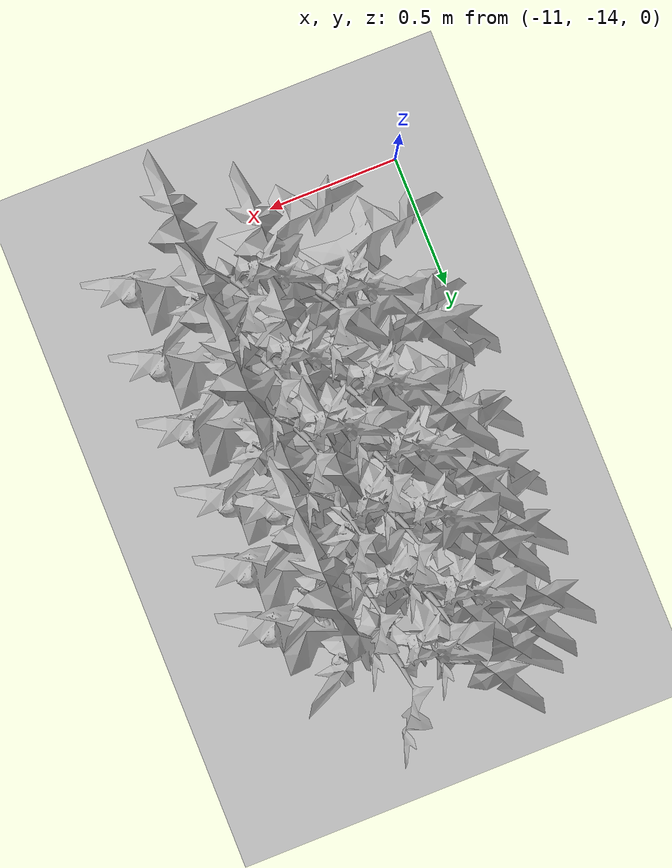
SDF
<sdf version="1.6">
 <world name="default">
  <model name="ground_plane">
   <static>1</static>
   <link name="link">
    <collision name="collision">
     <geometry><plane><normal>0 0 1</normal><size>100 100</size></plane></geometry>
     <surface>
      <contact><collide_bitmask>65535</collide_bitmask></contact>
      <friction><ode><mu>100</mu><mu2>50</mu2></ode></friction>
     </surface>
    </collision>
    <visual name="visual">
     <cast_shadows>0</cast_shadows>
     <geometry><plane><normal>0 0 1</normal><size>100 100</size></plane></geometry>
     <material>
      <script><uri>file://media/materials/scripts/gazebo.material</uri><name>Gazebo/Grey</name></script>
     </material>
    </visual>
   </link>
  </model>
  <model name="Front_Plant_1_29">
   <model name="tomato_plant_medium">
    <static>1</static>
    <link name="link">
     <collision name="collision">
      <pose>0 0 0 1.5708 -0 0</pose>
      <geometry><mesh><scale>0.5 0.5 0.5</scale><uri>model://stick/meshes/stick.dae</uri></mesh></geometry>
     </collision>
     <visual name="visual">
      <geometry>
       <mesh><scale>5e-06 5e-06 6e-06</scale><uri>model://tomato_plant_medium/meshes/tomato-plant.dae</uri></mesh>
      </geometry>
     </visual>
    </link>
    <pose>0.087453 -0.595994 0.012396 0 -0 0</pose>
   </model>
   <model name="tomato_plant_medium_0">
    <static>1</static>
    <link name="link">
     <collision name="collision">
      <pose>0 0 0 1.5708 -0 0</pose>
      <geometry><mesh><scale>0.5 0.5 0.5</scale><uri>model://stick/meshes/stick.dae</uri></mesh></geometry>
     </collision>
     <visual name="visual">
      <geometry>
       <mesh><scale>5e-06 5e-06 6e-06</scale><uri>model://tomato_plant_medium/meshes/tomato-plant.dae</uri></mesh>
      </geometry>
     </visual>
    </link>
    <pose>-0.086166 -0.251822 0.012396 0 -0 0</pose>
   </model>
   <model name="tomato_plant_medium_1">
    <static>1</static>
    <link name="link">
     <collision name="collision">
      <pose>0 0 0 1.5708 -0 0</pose>
      <geometry><mesh><scale>0.5 0.5 0.5</scale><uri>model://stick/meshes/stick.dae</uri></mesh></geometry>
     </collision>
     <visual name="visual">
      <geometry>
       <mesh><scale>5e-06 5e-06 6e-06</scale><uri>model://tomato_plant_medium/meshes/tomato-plant.dae</uri></mesh>
      </geometry>
     </visual>
    </link>
    <pose>0.080199 0.118127 0.012396 0 -0 0</pose>
   </model>
   <model name="tomato_plant_small">
    <static>1</static>
    <link name="link">
     <collision name="collision">
      <pose>0 0 0 1.5708 -0 0</pose>
      <geometry><mesh><scale>0.5 0.45 0.5</scale><uri>model://stick/meshes/stick.dae</uri></mesh></geometry>
     </collision>
     <visual name="visual">
      <geometry>
       <mesh><scale>5e-06 5e-06 5e-06</scale><uri>model://tomato_plant_small/meshes/tomato-plant.dae</uri></mesh>
      </geometry>
     </visual>
    </link>
    <pose>0.099683 -1.12011 0.012396 0 -0 0</pose>
   </model>
   <model name="tomato_plant_small_0">
    <static>1</static>
    <link name="link">
     <collision name="collision">
      <pose>0 0 0 1.5708 -0 0</pose>
      <geometry><mesh><scale>0.5 0.45 0.5</scale><uri>model://stick/meshes/stick.dae</uri></mesh></geometry>
     </collision>
     <visual name="visual">
      <geometry>
       <mesh><scale>5e-06 5e-06 5e-06</scale><uri>model://tomato_plant_small/meshes/tomato-plant.dae</uri></mesh>
      </geometry>
     </visual>
    </link>
    <pose>-0.138771 -0.983982 0.012396 0 -0 0</pose>
   </model>
   <model name="tomato_plant_small_1">
    <static>1</static>
    <link name="link">
     <collision name="collision">
      <pose>0 0 0 1.5708 -0 0</pose>
      <geometry><mesh><scale>0.5 0.45 0.5</scale><uri>model://stick/meshes/stick.dae</uri></mesh></geometry>
     </collision>
     <visual name="visual">
      <geometry>
       <mesh><scale>5e-06 5e-06 5e-06</scale><uri>model://tomato_plant_small/meshes/tomato-plant.dae</uri></mesh>
      </geometry>
     </visual>
    </link>
    <pose>0.101334 -0.848814 0.012396 0 -0 0</pose>
   </model>
   <model name="tomato_plant_small_2">
    <static>1</static>
    <link name="link">
     <collision name="collision">
      <pose>0 0 0 1.5708 -0 0</pose>
      <geometry><mesh><scale>0.5 0.45 0.5</scale><uri>model://stick/meshes/stick.dae</uri></mesh></geometry>
     </collision>
     <visual name="visual">
      <geometry>
       <mesh><scale>5e-06 5e-06 5e-06</scale><uri>model://tomato_plant_small/meshes/tomato-plant.dae</uri></mesh>
      </geometry>
     </visual>
    </link>
    <pose>-0.103369 -0.683189 0.012396 0 -0 0</pose>
   </model>
   <model name="tomato_plant_small_3">
    <static>1</static>
    <link name="link">
     <collision name="collision">
      <pose>0 0 0 1.5708 -0 0</pose>
      <geometry><mesh><scale>0.5 0.45 0.5</scale><uri>model://stick/meshes/stick.dae</uri></mesh></geometry>
     </collision>
     <visual name="visual">
      <geometry>
       <mesh><scale>5e-06 5e-06 5e-06</scale><uri>model://tomato_plant_small/meshes/tomato-plant.dae</uri></mesh>
      </geometry>
     </visual>
    </link>
    <pose>-0.104381 -0.464811 0.012396 0 -0 0</pose>
   </model>
   <model name="tomato_plant_small_4">
    <static>1</static>
    <link name="link">
     <collision name="collision">
      <pose>0 0 0 1.5708 -0 0</pose>
      <geometry><mesh><scale>0.5 0.45 0.5</scale><uri>model://stick/meshes/stick.dae</uri></mesh></geometry>
     </collision>
     <visual name="visual">
      <geometry>
       <mesh><scale>5e-06 5e-06 5e-06</scale><uri>model://tomato_plant_small/meshes/tomato-plant.dae</uri></mesh>
      </geometry>
     </visual>
    </link>
    <pose>0.055604 -0.336879 0.012396 0 -0 0</pose>
   </model>
   <model name="tomato_plant_small_5">
    <static>1</static>
    <link name="link">
     <collision name="collision">
      <pose>0 0 0 1.5708 -0 0</pose>
      <geometry><mesh><scale>0.5 0.45 0.5</scale><uri>model://stick/meshes/stick.dae</uri></mesh></geometry>
     </collision>
     <visual name="visual">
      <geometry>
       <mesh><scale>5e-06 5e-06 5e-06</scale><uri>model://tomato_plant_small/meshes/tomato-plant.dae</uri></mesh>
      </geometry>
     </visual>
    </link>
    <pose>0.085059 -0.092572 0.012396 0 -0 0</pose>
   </model>
   <model name="tomato_plant_small_6">
    <static>1</static>
    <link name="link">
     <collision name="collision">
      <pose>0 0 0 1.5708 -0 0</pose>
      <geometry><mesh><scale>0.5 0.45 0.5</scale><uri>model://stick/meshes/stick.dae</uri></mesh></geometry>
     </collision>
     <visual name="visual">
      <geometry>
       <mesh><scale>5e-06 5e-06 5e-06</scale><uri>model://tomato_plant_small/meshes/tomato-plant.dae</uri></mesh>
      </geometry>
     </visual>
    </link>
    <pose>-0.096345 0.008888 0.012396 0 -0 0</pose>
   </model>
   <static>0</static>
   <pose>-10.3932 -12.5892 0 0 -0 0</pose>
  </model>
 </world>
</sdf>
